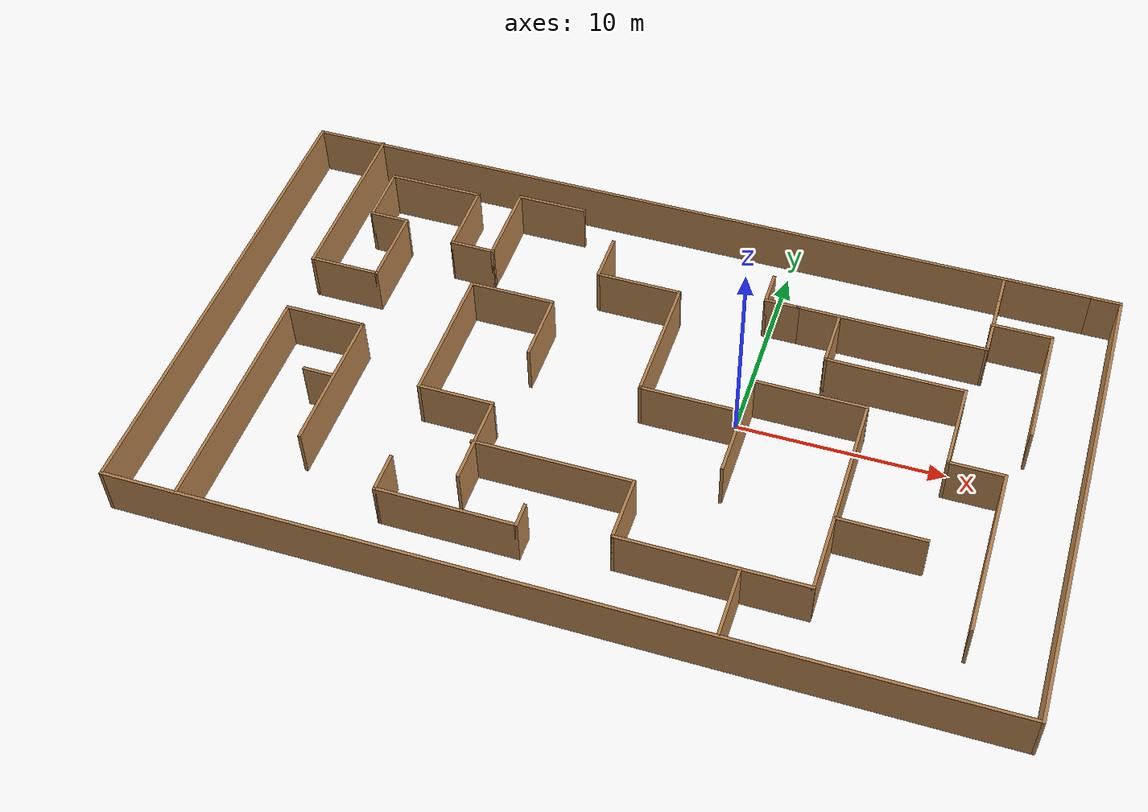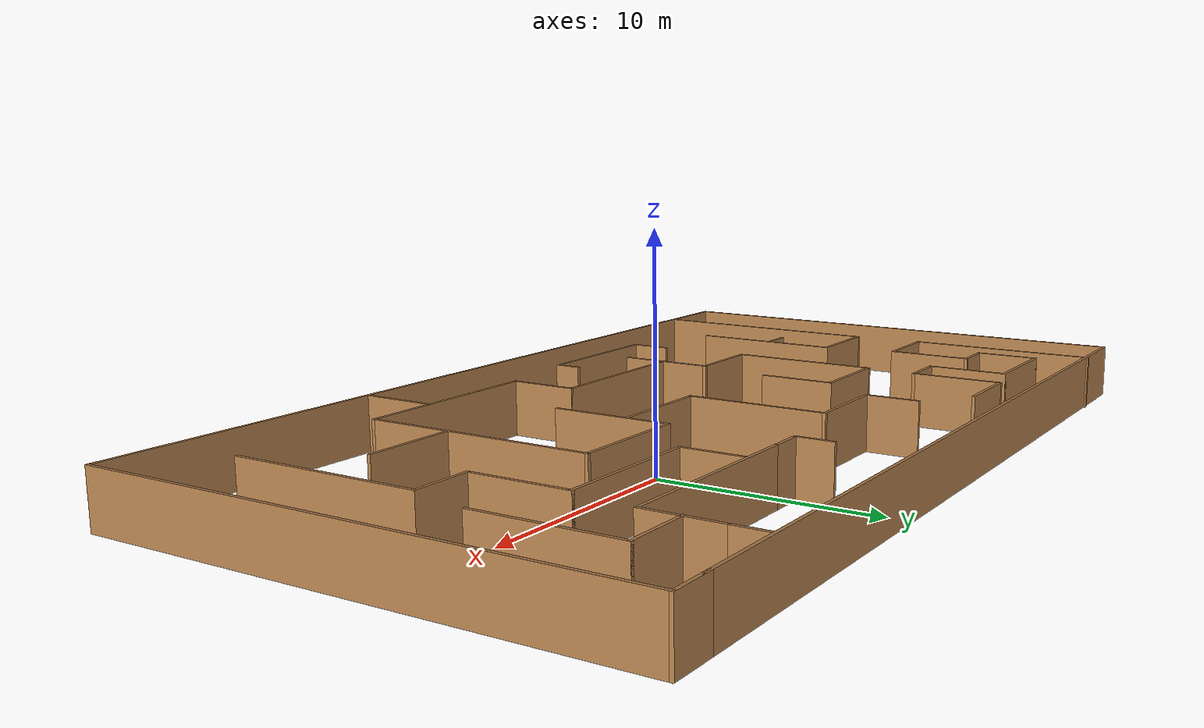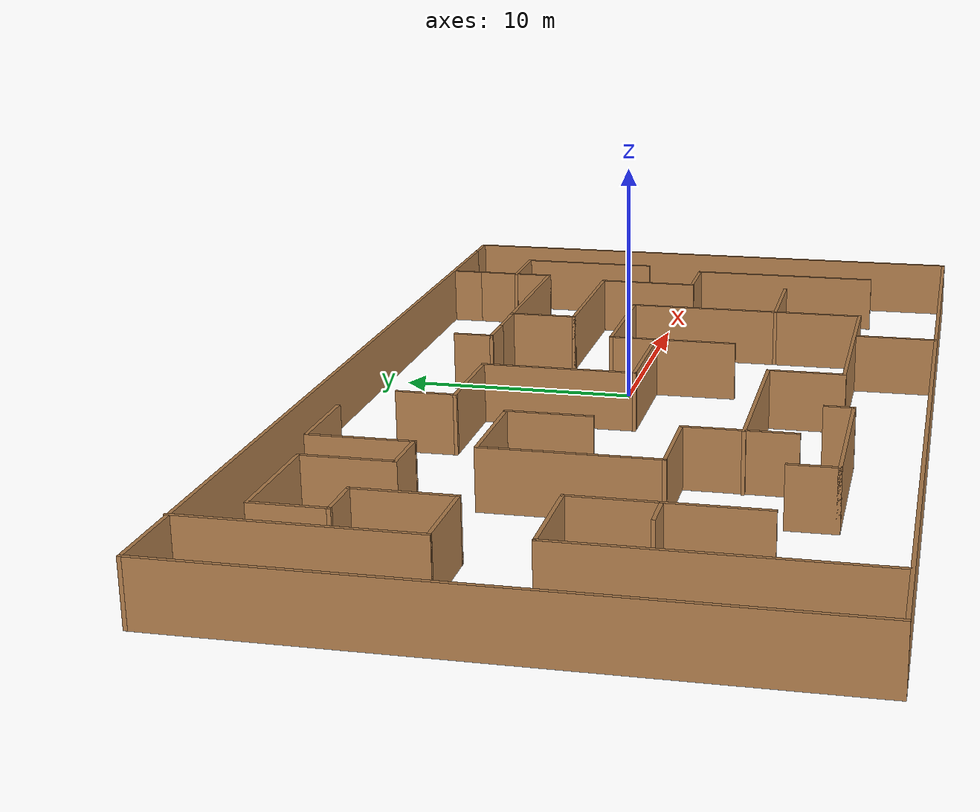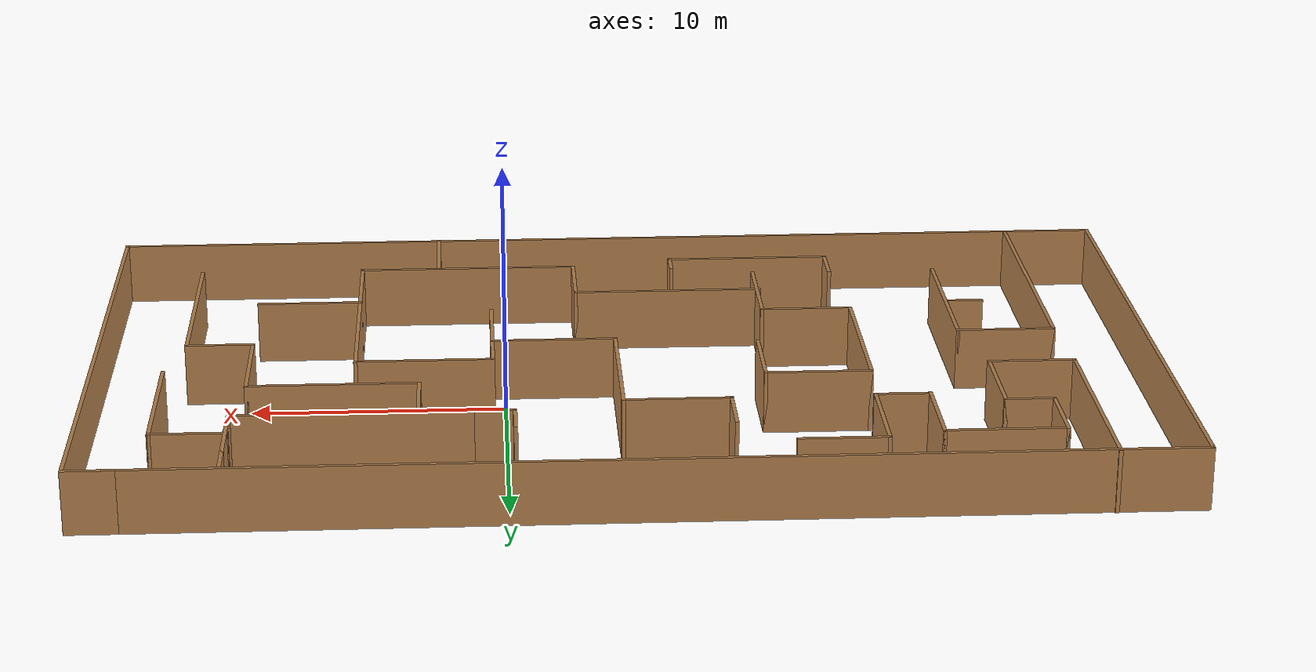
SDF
<?xml version='1.0'?>
<sdf version='1.7'>
  <model name='maze1'>
    <pose>-4.76912 -0.99516 0 0 -0 0</pose>
    <link name='Wall_0'>
      <collision name='Wall_0_Collision'>
        <geometry>
          <box>
            <size>40.25 0.15 2.5</size>
          </box>
        </geometry>
        <pose>0 0 1.25 0 -0 0</pose>
      </collision>
      <visual name='Wall_0_Visual'>
        <pose>0 0 1.25 0 -0 0</pose>
        <geometry>
          <box>
            <size>40.25 0.15 2.5</size>
          </box>
        </geometry>
        <material>
          <script>
            <uri>file:///usr/share/gazebo-11/media/materials/scripts/gazebo.material</uri>
            <name>Gazebo/Wood</name>
          </script>
          <ambient>0.5 1 0.5 1</ambient>
          <diffuse>0.5 1 0.5 1</diffuse>
          <specular>1 1 1 1</specular>

        </material>
        <meta>
          <layer>0</layer>
        </meta>
      </visual>
      <pose>-0.75 11.8857 0 0 -0 3.14159</pose>
    </link>
    <link name='Wall_1'>
      <collision name='Wall_1_Collision'>
        <geometry>
          <box>
            <size>24 0.15 2.5</size>
          </box>
        </geometry>
        <pose>0 0 1.25 0 -0 0</pose>
      </collision>
      <visual name='Wall_1_Visual'>
        <pose>0 0 1.25 0 -0 0</pose>
        <geometry>
          <box>
            <size>24 0.15 2.5</size>
          </box>
        </geometry>
        <material>
          <script>
            <uri>file:///usr/share/gazebo-11/media/materials/scripts/gazebo.material</uri>
            <name>Gazebo/Wood</name>
          </script>
          <ambient>0.5 1 0.5 1</ambient>
          <diffuse>0.5 1 0.5 1</diffuse>
          <specular>1 1 1 1</specular>

        </material>
        <meta>
          <layer>0</layer>
        </meta>
      </visual>
      <pose>-20.8 -0.039321 0 0 -0 -1.5708</pose>
    </link>
    <link name='Wall_10'>
      <collision name='Wall_10_Collision'>
        <geometry>
          <box>
            <size>4.5 0.15 2.5</size>
          </box>
        </geometry>
        <pose>0 0 1.25 0 -0 0</pose>
      </collision>
      <visual name='Wall_10_Visual'>
        <pose>0 0 1.25 0 -0 0</pose>
        <geometry>
          <box>
            <size>4.5 0.15 2.5</size>
          </box>
        </geometry>
        <material>
          <script>
            <uri>file:///usr/share/gazebo-11/media/materials/scripts/gazebo.material</uri>
            <name>Gazebo/Wood</name>
          </script>
          <ambient>0.5 1 0.5 1</ambient>
          <diffuse>0.5 1 0.5 1</diffuse>
          <specular>1 1 1 1</specular>

        </material>
        <meta>
          <layer>0</layer>
        </meta>
      </visual>
      <pose>-5.73871 -5.19443 0 0 -0 1.5708</pose>
    </link>
    <link name='Wall_11'>
      <collision name='Wall_11_Collision'>
        <geometry>
          <box>
            <size>3.75 0.15 2.5</size>
          </box>
        </geometry>
        <pose>0 0 1.25 0 -0 0</pose>
      </collision>
      <visual name='Wall_11_Visual'>
        <pose>0 0 1.25 0 -0 0</pose>
        <geometry>
          <box>
            <size>3.75 0.15 2.5</size>
          </box>
        </geometry>
        <material>
          <script>
            <uri>file:///usr/share/gazebo-11/media/materials/scripts/gazebo.material</uri>
            <name>Gazebo/Wood</name>
          </script>
          <ambient>0.5 1 0.5 1</ambient>
          <diffuse>0.5 1 0.5 1</diffuse>
          <specular>1 1 1 1</specular>

        </material>
        <meta>
          <layer>0</layer>
        </meta>
      </visual>
      <pose>-7.53871 -3.01943 0 0 -0 3.14159</pose>
    </link>
    <link name='Wall_12'>
      <collision name='Wall_12_Collision'>
        <geometry>
          <box>
            <size>7 0.15 2.5</size>
          </box>
        </geometry>
        <pose>0 0 1.25 0 -0 0</pose>
      </collision>
      <visual name='Wall_12_Visual'>
        <pose>0 0 1.25 0 -0 0</pose>
        <geometry>
          <box>
            <size>7 0.15 2.5</size>
          </box>
        </geometry>
        <material>
          <script>
            <uri>file:///usr/share/gazebo-11/media/materials/scripts/gazebo.material</uri>
            <name>Gazebo/Wood</name>
          </script>
          <ambient>0.5 1 0.5 1</ambient>
          <diffuse>0.5 1 0.5 1</diffuse>
          <specular>1 1 1 1</specular>

        </material>
        <meta>
          <layer>0</layer>
        </meta>
      </visual>
      <pose>-9.33871 0.405569 0 0 -0 1.5708</pose>
    </link>
    <link name='Wall_14'>
      <collision name='Wall_14_Collision'>
        <geometry>
          <box>
            <size>9 0.15 2.5</size>
          </box>
        </geometry>
        <pose>0 0 1.25 0 -0 0</pose>
      </collision>
      <visual name='Wall_14_Visual'>
        <pose>0 0 1.25 0 -0 0</pose>
        <geometry>
          <box>
            <size>9 0.15 2.5</size>
          </box>
        </geometry>
        <material>
          <script>
            <uri>file:///usr/share/gazebo-11/media/materials/scripts/gazebo.material</uri>
            <name>Gazebo/Wood</name>
          </script>
          <ambient>0.5 1 0.5 1</ambient>
          <diffuse>0.5 1 0.5 1</diffuse>
          <specular>1 1 1 1</specular>

        </material>
        <meta>
          <layer>0</layer>
        </meta>
      </visual>
      <pose>-17.3919 7.53932 0 0 -0 -1.5708</pose>
    </link>
    <link name='Wall_15'>
      <collision name='Wall_15_Collision'>
        <geometry>
          <box>
            <size>3.5 0.15 2.5</size>
          </box>
        </geometry>
        <pose>0 0 1.25 0 -0 0</pose>
      </collision>
      <visual name='Wall_15_Visual'>
        <pose>0 0 1.25 0 -0 0</pose>
        <geometry>
          <box>
            <size>3.5 0.15 2.5</size>
          </box>
        </geometry>
        <material>
          <script>
            <uri>file:///usr/share/gazebo-11/media/materials/scripts/gazebo.material</uri>
            <name>Gazebo/Wood</name>
          </script>
          <ambient>0.5 1 0.5 1</ambient>
          <diffuse>0.5 1 0.5 1</diffuse>
          <specular>1 1 1 1</specular>

        </material>
        <meta>
          <layer>0</layer>
        </meta>
      </visual>
      <pose>-15.7169 3.11432 0 0 -0 0</pose>
    </link>
    <link name='Wall_16'>
      <collision name='Wall_16_Collision'>
        <geometry>
          <box>
            <size>4 0.15 2.5</size>
          </box>
        </geometry>
        <pose>0 0 1.25 0 -0 0</pose>
      </collision>
      <visual name='Wall_16_Visual'>
        <pose>0 0 1.25 0 -0 0</pose>
        <geometry>
          <box>
            <size>4 0.15 2.5</size>
          </box>
        </geometry>
        <material>
          <script>
            <uri>file:///usr/share/gazebo-11/media/materials/scripts/gazebo.material</uri>
            <name>Gazebo/Wood</name>
          </script>
          <ambient>0.5 1 0.5 1</ambient>
          <diffuse>0.5 1 0.5 1</diffuse>
          <specular>1 1 1 1</specular>

        </material>
        <meta>
          <layer>0</layer>
        </meta>
      </visual>
      <pose>-14.0419 5.03932 0 0 -0 1.5708</pose>
    </link>
    <link name='Wall_17'>
      <collision name='Wall_17_Collision'>
        <geometry>
          <box>
            <size>2 0.15 2.5</size>
          </box>
        </geometry>
        <pose>0 0 1.25 0 -0 0</pose>
      </collision>
      <visual name='Wall_17_Visual'>
        <pose>0 0 1.25 0 -0 0</pose>
        <geometry>
          <box>
            <size>2 0.15 2.5</size>
          </box>
        </geometry>
        <material>
          <script>
            <uri>file:///usr/share/gazebo-11/media/materials/scripts/gazebo.material</uri>
            <name>Gazebo/Wood</name>
          </script>
          <ambient>0.5 1 0.5 1</ambient>
          <diffuse>0.5 1 0.5 1</diffuse>
          <specular>1 1 1 1</specular>

        </material>
        <meta>
          <layer>0</layer>
        </meta>
      </visual>
      <pose>-14.9669 6.96432 0 0 -0 3.14159</pose>
    </link>
    <link name='Wall_18'>
      <collision name='Wall_18_Collision'>
        <geometry>
          <box>
            <size>3 0.15 2.5</size>
          </box>
        </geometry>
        <pose>0 0 1.25 0 -0 0</pose>
      </collision>
      <visual name='Wall_18_Visual'>
        <pose>0 0 1.25 0 -0 0</pose>
        <geometry>
          <box>
            <size>3 0.15 2.5</size>
          </box>
        </geometry>
        <material>
          <script>
            <uri>file:///usr/share/gazebo-11/media/materials/scripts/gazebo.material</uri>
            <name>Gazebo/Wood</name>
          </script>
          <ambient>0.5 1 0.5 1</ambient>
          <diffuse>0.5 1 0.5 1</diffuse>
          <specular>1 1 1 1</specular>

        </material>
        <meta>
          <layer>0</layer>
        </meta>
      </visual>
      <pose>-15.8919 8.38932 0 0 -0 1.5708</pose>
    </link>
    <link name='Wall_19'>
      <collision name='Wall_19_Collision'>
        <geometry>
          <box>
            <size>4.75 0.15 2.5</size>
          </box>
        </geometry>
        <pose>0 0 1.25 0 -0 0</pose>
      </collision>
      <visual name='Wall_19_Visual'>
        <pose>0 0 1.25 0 -0 0</pose>
        <geometry>
          <box>
            <size>4.75 0.15 2.5</size>
          </box>
        </geometry>
        <material>
          <script>
            <uri>file:///usr/share/gazebo-11/media/materials/scripts/gazebo.material</uri>
            <name>Gazebo/Wood</name>
          </script>
          <ambient>0.5 1 0.5 1</ambient>
          <diffuse>0.5 1 0.5 1</diffuse>
          <specular>1 1 1 1</specular>

        </material>
        <meta>
          <layer>0</layer>
        </meta>
      </visual>
      <pose>-13.5919 9.81432 0 0 -0 0</pose>
    </link>
    <link name='Wall_2'>
      <collision name='Wall_2_Collision'>
        <geometry>
          <box>
            <size>41.75 0.15 2.5</size>
          </box>
        </geometry>
        <pose>0 0 1.25 0 -0 0</pose>
      </collision>
      <visual name='Wall_2_Visual'>
        <pose>0 0 1.25 0 -0 0</pose>
        <geometry>
          <box>
            <size>41.75 0.15 2.5</size>
          </box>
        </geometry>
        <material>
          <script>
            <uri>file:///usr/share/gazebo-11/media/materials/scripts/gazebo.material</uri>
            <name>Gazebo/Wood</name>
          </script>
          <ambient>0.5 1 0.5 1</ambient>
          <diffuse>0.5 1 0.5 1</diffuse>
          <specular>1 1 1 1</specular>

        </material>
        <meta>
          <layer>0</layer>
        </meta>
      </visual>
      <pose>-0 -11.9643 0 0 -0 0</pose>
    </link>
    <link name='Wall_20'>
      <collision name='Wall_20_Collision'>
        <geometry>
          <box>
            <size>3.75 0.15 2.5</size>
          </box>
        </geometry>
        <pose>0 0 1.25 0 -0 0</pose>
      </collision>
      <visual name='Wall_20_Visual'>
        <pose>0 0 1.25 0 -0 0</pose>
        <geometry>
          <box>
            <size>3.75 0.15 2.5</size>
          </box>
        </geometry>
        <material>
          <script>
            <uri>file:///usr/share/gazebo-11/media/materials/scripts/gazebo.material</uri>
            <name>Gazebo/Wood</name>
          </script>
          <ambient>0.5 1 0.5 1</ambient>
          <diffuse>0.5 1 0.5 1</diffuse>
          <specular>1 1 1 1</specular>

        </material>
        <meta>
          <layer>0</layer>
        </meta>
      </visual>
      <pose>-11.2919 8.01432 0 0 -0 -1.5708</pose>
    </link>
    <link name='Wall_21'>
      <collision name='Wall_21_Collision'>
        <geometry>
          <box>
            <size>2.25 0.15 2.5</size>
          </box>
        </geometry>
        <pose>0 0 1.25 0 -0 0</pose>
      </collision>
      <visual name='Wall_21_Visual'>
        <pose>0 0 1.25 0 -0 0</pose>
        <geometry>
          <box>
            <size>2.25 0.15 2.5</size>
          </box>
        </geometry>
        <material>
          <script>
            <uri>file:///usr/share/gazebo-11/media/materials/scripts/gazebo.material</uri>
            <name>Gazebo/Wood</name>
          </script>
          <ambient>0.5 1 0.5 1</ambient>
          <diffuse>0.5 1 0.5 1</diffuse>
          <specular>1 1 1 1</specular>

        </material>
        <meta>
          <layer>0</layer>
        </meta>
      </visual>
      <pose>-10.2419 6.21432 0 0 -0 0</pose>
    </link>
    <link name='Wall_22'>
      <collision name='Wall_22_Collision'>
        <geometry>
          <box>
            <size>4.25 0.15 2.5</size>
          </box>
        </geometry>
        <pose>0 0 1.25 0 -0 0</pose>
      </collision>
      <visual name='Wall_22_Visual'>
        <pose>0 0 1.25 0 -0 0</pose>
        <geometry>
          <box>
            <size>4.25 0.15 2.5</size>
          </box>
        </geometry>
        <material>
          <script>
            <uri>file:///usr/share/gazebo-11/media/materials/scripts/gazebo.material</uri>
            <name>Gazebo/Wood</name>
          </script>
          <ambient>0.5 1 0.5 1</ambient>
          <diffuse>0.5 1 0.5 1</diffuse>
          <specular>1 1 1 1</specular>

        </material>
        <meta>
          <layer>0</layer>
        </meta>
      </visual>
      <pose>-9.19191 8.26432 0 0 -0 1.5708</pose>
    </link>
    <link name='Wall_23'>
      <collision name='Wall_23_Collision'>
        <geometry>
          <box>
            <size>3.5 0.15 2.5</size>
          </box>
        </geometry>
        <pose>0 0 1.25 0 -0 0</pose>
      </collision>
      <visual name='Wall_23_Visual'>
        <pose>0 0 1.25 0 -0 0</pose>
        <geometry>
          <box>
            <size>3.5 0.15 2.5</size>
          </box>
        </geometry>
        <material>
          <script>
            <uri>file:///usr/share/gazebo-11/media/materials/scripts/gazebo.material</uri>
            <name>Gazebo/Wood</name>
          </script>
          <ambient>0.5 1 0.5 1</ambient>
          <diffuse>0.5 1 0.5 1</diffuse>
          <specular>1 1 1 1</specular>

        </material>
        <meta>
          <layer>0</layer>
        </meta>
      </visual>
      <pose>-7.51691 10.3143 0 0 -0 0</pose>
    </link>
    <link name='Wall_25'>
      <collision name='Wall_25_Collision'>
        <geometry>
          <box>
            <size>4.25 0.15 2.5</size>
          </box>
        </geometry>
        <pose>0 0 1.25 0 -0 0</pose>
      </collision>
      <visual name='Wall_25_Visual'>
        <pose>0 0 1.25 0 -0 0</pose>
        <geometry>
          <box>
            <size>4.25 0.15 2.5</size>
          </box>
        </geometry>
        <material>
          <script>
            <uri>file:///usr/share/gazebo-11/media/materials/scripts/gazebo.material</uri>
            <name>Gazebo/Wood</name>
          </script>
          <ambient>0.5 1 0.5 1</ambient>
          <diffuse>0.5 1 0.5 1</diffuse>
          <specular>1 1 1 1</specular>

        </material>
        <meta>
          <layer>0</layer>
        </meta>
      </visual>
      <pose>-7.28871 3.83057 0 0 -0 0</pose>
    </link>
    <link name='Wall_26'>
      <collision name='Wall_26_Collision'>
        <geometry>
          <box>
            <size>3.5 0.15 2.5</size>
          </box>
        </geometry>
        <pose>0 0 1.25 0 -0 0</pose>
      </collision>
      <visual name='Wall_26_Visual'>
        <pose>0 0 1.25 0 -0 0</pose>
        <geometry>
          <box>
            <size>3.5 0.15 2.5</size>
          </box>
        </geometry>
        <material>
          <script>
            <uri>file:///usr/share/gazebo-11/media/materials/scripts/gazebo.material</uri>
            <name>Gazebo/Wood</name>
          </script>
          <ambient>0.5 1 0.5 1</ambient>
          <diffuse>0.5 1 0.5 1</diffuse>
          <specular>1 1 1 1</specular>

        </material>
        <meta>
          <layer>0</layer>
        </meta>
      </visual>
      <pose>-5.23871 2.15557 0 0 -0 -1.5708</pose>
    </link>
    <link name='Wall_28'>
      <collision name='Wall_28_Collision'>
        <geometry>
          <box>
            <size>7.75 0.15 2.5</size>
          </box>
        </geometry>
        <pose>0 0 1.25 0 -0 0</pose>
      </collision>
      <visual name='Wall_28_Visual'>
        <pose>0 0 1.25 0 -0 0</pose>
        <geometry>
          <box>
            <size>7.75 0.15 2.5</size>
          </box>
        </geometry>
        <material>
          <script>
            <uri>file:///usr/share/gazebo-11/media/materials/scripts/gazebo.material</uri>
            <name>Gazebo/Wood</name>
          </script>
          <ambient>0.5 1 0.5 1</ambient>
          <diffuse>0.5 1 0.5 1</diffuse>
          <specular>1 1 1 1</specular>

        </material>
        <meta>
          <layer>0</layer>
        </meta>
      </visual>
      <pose>-2.03537 -5.37049 0 0 -0 0</pose>
    </link>
    <link name='Wall_29'>
      <collision name='Wall_29_Collision'>
        <geometry>
          <box>
            <size>3.25 0.15 2.5</size>
          </box>
        </geometry>
        <pose>0 0 1.25 0 -0 0</pose>
      </collision>
      <visual name='Wall_29_Visual'>
        <pose>0 0 1.25 0 -0 0</pose>
        <geometry>
          <box>
            <size>3.25 0.15 2.5</size>
          </box>
        </geometry>
        <material>
          <script>
            <uri>file:///usr/share/gazebo-11/media/materials/scripts/gazebo.material</uri>
            <name>Gazebo/Wood</name>
          </script>
          <ambient>0.5 1 0.5 1</ambient>
          <diffuse>0.5 1 0.5 1</diffuse>
          <specular>1 1 1 1</specular>

        </material>
        <meta>
          <layer>0</layer>
        </meta>
      </visual>
      <pose>1.76463 -6.92049 0 0 -0 -1.5708</pose>
    </link>
    <link name='Wall_3'>
      <collision name='Wall_3_Collision'>
        <geometry>
          <box>
            <size>24 0.15 2.5</size>
          </box>
        </geometry>
        <pose>0 0 1.25 0 -0 0</pose>
      </collision>
      <visual name='Wall_3_Visual'>
        <pose>0 0 1.25 0 -0 0</pose>
        <geometry>
          <box>
            <size>24 0.15 2.5</size>
          </box>
        </geometry>
        <material>
          <script>
            <uri>file:///usr/share/gazebo-11/media/materials/scripts/gazebo.material</uri>
            <name>Gazebo/Wood</name>
          </script>
          <ambient>0.5 1 0.5 1</ambient>
          <diffuse>0.5 1 0.5 1</diffuse>
          <specular>1 1 1 1</specular>

        </material>
        <meta>
          <layer>0</layer>
        </meta>
      </visual>
      <pose>20.8 -0.039321 0 0 -0 1.5708</pose>
    </link>
    <link name='Wall_30'>
      <collision name='Wall_30_Collision'>
        <geometry>
          <box>
            <size>9 0.15 2.5</size>
          </box>
        </geometry>
        <pose>0 0 1.25 0 -0 0</pose>
      </collision>
      <visual name='Wall_30_Visual'>
        <pose>0 0 1.25 0 -0 0</pose>
        <geometry>
          <box>
            <size>9 0.15 2.5</size>
          </box>
        </geometry>
        <material>
          <script>
            <uri>file:///usr/share/gazebo-11/media/materials/scripts/gazebo.material</uri>
            <name>Gazebo/Wood</name>
          </script>
          <ambient>0.5 1 0.5 1</ambient>
          <diffuse>0.5 1 0.5 1</diffuse>
          <specular>1 1 1 1</specular>

        </material>
        <meta>
          <layer>0</layer>
        </meta>
      </visual>
      <pose>6.18963 -8.47049 0 0 -0 0</pose>
    </link>
    <link name='Wall_31'>
      <collision name='Wall_31_Collision'>
        <geometry>
          <box>
            <size>10.5 0.15 2.5</size>
          </box>
        </geometry>
        <pose>0 0 1.25 0 -0 0</pose>
      </collision>
      <visual name='Wall_31_Visual'>
        <pose>0 0 1.25 0 -0 0</pose>
        <geometry>
          <box>
            <size>10.5 0.15 2.5</size>
          </box>
        </geometry>
        <material>
          <script>
            <uri>file:///usr/share/gazebo-11/media/materials/scripts/gazebo.material</uri>
            <name>Gazebo/Wood</name>
          </script>
          <ambient>0.5 1 0.5 1</ambient>
          <diffuse>0.5 1 0.5 1</diffuse>
          <specular>1 1 1 1</specular>

        </material>
        <meta>
          <layer>0</layer>
        </meta>
      </visual>
      <pose>10.6146 -3.29549 0 0 -0 1.5708</pose>
    </link>
    <link name='Wall_32'>
      <collision name='Wall_32_Collision'>
        <geometry>
          <box>
            <size>5.5 0.15 2.5</size>
          </box>
        </geometry>
        <pose>0 0 1.25 0 -0 0</pose>
      </collision>
      <visual name='Wall_32_Visual'>
        <pose>0 0 1.25 0 -0 0</pose>
        <geometry>
          <box>
            <size>5.5 0.15 2.5</size>
          </box>
        </geometry>
        <material>
          <script>
            <uri>file:///usr/share/gazebo-11/media/materials/scripts/gazebo.material</uri>
            <name>Gazebo/Wood</name>
          </script>
          <ambient>0.5 1 0.5 1</ambient>
          <diffuse>0.5 1 0.5 1</diffuse>
          <specular>1 1 1 1</specular>

        </material>
        <meta>
          <layer>0</layer>
        </meta>
      </visual>
      <pose>7.93963 1.87951 0 0 -0 3.14159</pose>
    </link>
    <link name='Wall_33'>
      <collision name='Wall_33_Collision'>
        <geometry>
          <box>
            <size>5.5 0.15 2.5</size>
          </box>
        </geometry>
        <pose>0 0 1.25 0 -0 0</pose>
      </collision>
      <visual name='Wall_33_Visual'>
        <pose>0 0 1.25 0 -0 0</pose>
        <geometry>
          <box>
            <size>5.5 0.15 2.5</size>
          </box>
        </geometry>
        <material>
          <script>
            <uri>file:///usr/share/gazebo-11/media/materials/scripts/gazebo.material</uri>
            <name>Gazebo/Wood</name>
          </script>
          <ambient>0.5 1 0.5 1</ambient>
          <diffuse>0.5 1 0.5 1</diffuse>
          <specular>1 1 1 1</specular>

        </material>
        <meta>
          <layer>0</layer>
        </meta>
      </visual>
      <pose>5.26463 -0.795487 0 0 -0 -1.5708</pose>
    </link>
    <link name='Wall_35'>
      <collision name='Wall_35_Collision'>
        <geometry>
          <box>
            <size>5 0.15 2.5</size>
          </box>
        </geometry>
        <pose>0 0 1.25 0 -0 0</pose>
      </collision>
      <visual name='Wall_35_Visual'>
        <pose>0 0 1.25 0 -0 0</pose>
        <geometry>
          <box>
            <size>5 0.15 2.5</size>
          </box>
        </geometry>
        <material>
          <script>
            <uri>file:///usr/share/gazebo-11/media/materials/scripts/gazebo.material</uri>
            <name>Gazebo/Wood</name>
          </script>
          <ambient>0.5 1 0.5 1</ambient>
          <diffuse>0.5 1 0.5 1</diffuse>
          <specular>1 1 1 1</specular>

        </material>
        <meta>
          <layer>0</layer>
        </meta>
      </visual>
      <pose>2.81465 -0.07374 0 0 -0 3.14159</pose>
    </link>
    <link name='Wall_36'>
      <collision name='Wall_36_Collision'>
        <geometry>
          <box>
            <size>6.5 0.15 2.5</size>
          </box>
        </geometry>
        <pose>0 0 1.25 0 -0 0</pose>
      </collision>
      <visual name='Wall_36_Visual'>
        <pose>0 0 1.25 0 -0 0</pose>
        <geometry>
          <box>
            <size>6.5 0.15 2.5</size>
          </box>
        </geometry>
        <material>
          <script>
            <uri>file:///usr/share/gazebo-11/media/materials/scripts/gazebo.material</uri>
            <name>Gazebo/Wood</name>
          </script>
          <ambient>0.5 1 0.5 1</ambient>
          <diffuse>0.5 1 0.5 1</diffuse>
          <specular>1 1 1 1</specular>

        </material>
        <meta>
          <layer>0</layer>
        </meta>
      </visual>
      <pose>0.389649 3.10126 0 0 -0 1.5708</pose>
    </link>
    <link name='Wall_37'>
      <collision name='Wall_37_Collision'>
        <geometry>
          <box>
            <size>4.25 0.15 2.5</size>
          </box>
        </geometry>
        <pose>0 0 1.25 0 -0 0</pose>
      </collision>
      <visual name='Wall_37_Visual'>
        <pose>0 0 1.25 0 -0 0</pose>
        <geometry>
          <box>
            <size>4.25 0.15 2.5</size>
          </box>
        </geometry>
        <material>
          <script>
            <uri>file:///usr/share/gazebo-11/media/materials/scripts/gazebo.material</uri>
            <name>Gazebo/Wood</name>
          </script>
          <ambient>0.5 1 0.5 1</ambient>
          <diffuse>0.5 1 0.5 1</diffuse>
          <specular>1 1 1 1</specular>

        </material>
        <meta>
          <layer>0</layer>
        </meta>
      </visual>
      <pose>-1.66035 6.27626 0 0 -0 3.14159</pose>
    </link>
    <link name='Wall_38'>
      <collision name='Wall_38_Collision'>
        <geometry>
          <box>
            <size>2.5 0.15 2.5</size>
          </box>
        </geometry>
        <pose>0 0 1.25 0 -0 0</pose>
      </collision>
      <visual name='Wall_38_Visual'>
        <pose>0 0 1.25 0 -0 0</pose>
        <geometry>
          <box>
            <size>2.5 0.15 2.5</size>
          </box>
        </geometry>
        <material>
          <script>
            <uri>file:///usr/share/gazebo-11/media/materials/scripts/gazebo.material</uri>
            <name>Gazebo/Wood</name>
          </script>
          <ambient>0.5 1 0.5 1</ambient>
          <diffuse>0.5 1 0.5 1</diffuse>
          <specular>1 1 1 1</specular>

        </material>
        <meta>
          <layer>0</layer>
        </meta>
      </visual>
      <pose>-3.71035 7.45126 0 0 -0 1.5708</pose>
    </link>
    <link name='Wall_4'>
      <collision name='Wall_4_Collision'>
        <geometry>
          <box>
            <size>2 0.15 2.5</size>
          </box>
        </geometry>
        <pose>0 0 1.25 0 -0 0</pose>
      </collision>
      <visual name='Wall_4_Visual'>
        <pose>0 0 1.25 0 -0 0</pose>
        <geometry>
          <box>
            <size>2 0.15 2.5</size>
          </box>
        </geometry>
        <material>
          <script>
            <uri>file:///usr/share/gazebo-11/media/materials/scripts/gazebo.material</uri>
            <name>Gazebo/Wood</name>
          </script>
          <ambient>0.5 1 0.5 1</ambient>
          <diffuse>0.5 1 0.5 1</diffuse>
          <specular>1 1 1 1</specular>

        </material>
        <meta>
          <layer>0</layer>
        </meta>
      </visual>
      <pose>19.875 11.8857 0 0 -0 3.14159</pose>
    </link>
    <link name='Wall_43'>
      <collision name='Wall_43_Collision'>
        <geometry>
          <box>
            <size>9.25 0.15 2.5</size>
          </box>
        </geometry>
        <pose>0 0 1.25 0 -0 0</pose>
      </collision>
      <visual name='Wall_43_Visual'>
        <pose>0 0 1.25 0 -0 0</pose>
        <geometry>
          <box>
            <size>9.25 0.15 2.5</size>
          </box>
        </geometry>
        <material>
          <script>
            <uri>file:///usr/share/gazebo-11/media/materials/scripts/gazebo.material</uri>
            <name>Gazebo/Wood</name>
          </script>
          <ambient>0.5 1 0.5 1</ambient>
          <diffuse>0.5 1 0.5 1</diffuse>
          <specular>1 1 1 1</specular>

        </material>
        <meta>
          <layer>0</layer>
        </meta>
      </visual>
      <pose>10.6457 7.04209 0 0 -0 0</pose>
    </link>
    <link name='Wall_44'>
      <collision name='Wall_44_Collision'>
        <geometry>
          <box>
            <size>3.5 0.15 2.5</size>
          </box>
        </geometry>
        <pose>0 0 1.25 0 -0 0</pose>
      </collision>
      <visual name='Wall_44_Visual'>
        <pose>0 0 1.25 0 -0 0</pose>
        <geometry>
          <box>
            <size>3.5 0.15 2.5</size>
          </box>
        </geometry>
        <material>
          <script>
            <uri>file:///usr/share/gazebo-11/media/materials/scripts/gazebo.material</uri>
            <name>Gazebo/Wood</name>
          </script>
          <ambient>0.5 1 0.5 1</ambient>
          <diffuse>0.5 1 0.5 1</diffuse>
          <specular>1 1 1 1</specular>

        </material>
        <meta>
          <layer>0</layer>
        </meta>
      </visual>
      <pose>15.1957 8.71709 0 0 -0 1.5708</pose>
    </link>
    <link name='Wall_45'>
      <collision name='Wall_45_Collision'>
        <geometry>
          <box>
            <size>1.5 0.15 2.5</size>
          </box>
        </geometry>
        <pose>0 0 1.25 0 -0 0</pose>
      </collision>
      <visual name='Wall_45_Visual'>
        <pose>0 0 1.25 0 -0 0</pose>
        <geometry>
          <box>
            <size>1.5 0.15 2.5</size>
          </box>
        </geometry>
        <material>
          <script>
            <uri>file:///usr/share/gazebo-11/media/materials/scripts/gazebo.material</uri>
            <name>Gazebo/Wood</name>
          </script>
          <ambient>0.5 1 0.5 1</ambient>
          <diffuse>0.5 1 0.5 1</diffuse>
          <specular>1 1 1 1</specular>

        </material>
        <meta>
          <layer>0</layer>
        </meta>
      </visual>
      <pose>15.1957 11.0671 0 0 -0 1.5708</pose>
    </link>
    <link name='Wall_47'>
      <collision name='Wall_47_Collision'>
        <geometry>
          <box>
            <size>1.75 0.15 2.5</size>
          </box>
        </geometry>
        <pose>0 0 1.25 0 -0 0</pose>
      </collision>
      <visual name='Wall_47_Visual'>
        <pose>0 0 1.25 0 -0 0</pose>
        <geometry>
          <box>
            <size>1.75 0.15 2.5</size>
          </box>
        </geometry>
        <material>
          <script>
            <uri>file:///usr/share/gazebo-11/media/materials/scripts/gazebo.material</uri>
            <name>Gazebo/Wood</name>
          </script>
          <ambient>0.5 1 0.5 1</ambient>
          <diffuse>0.5 1 0.5 1</diffuse>
          <specular>1 1 1 1</specular>

        </material>
        <meta>
          <layer>0</layer>
        </meta>
      </visual>
      <pose>5.29569 7.04209 0 0 -0 3.14159</pose>
    </link>
    <link name='Wall_48'>
      <collision name='Wall_48_Collision'>
        <geometry>
          <box>
            <size>1.75 0.15 2.5</size>
          </box>
        </geometry>
        <pose>0 0 1.25 0 -0 0</pose>
      </collision>
      <visual name='Wall_48_Visual'>
        <pose>0 0 1.25 0 -0 0</pose>
        <geometry>
          <box>
            <size>1.75 0.15 2.5</size>
          </box>
        </geometry>
        <material>
          <script>
            <uri>file:///usr/share/gazebo-11/media/materials/scripts/gazebo.material</uri>
            <name>Gazebo/Wood</name>
          </script>
          <ambient>0.5 1 0.5 1</ambient>
          <diffuse>0.5 1 0.5 1</diffuse>
          <specular>1 1 1 1</specular>

        </material>
        <meta>
          <layer>0</layer>
        </meta>
      </visual>
      <pose>4.49569 7.84209 0 0 -0 1.5708</pose>
    </link>
    <link name='Wall_52'>
      <collision name='Wall_52_Collision'>
        <geometry>
          <box>
            <size>3 0.15 2.5</size>
          </box>
        </geometry>
        <pose>0 0 1.25 0 -0 0</pose>
      </collision>
      <visual name='Wall_52_Visual'>
        <pose>0 0 1.25 0 -0 0</pose>
        <geometry>
          <box>
            <size>3 0.15 2.5</size>
          </box>
        </geometry>
        <material>
          <script>
            <uri>file:///usr/share/gazebo-11/media/materials/scripts/gazebo.material</uri>
            <name>Gazebo/Wood</name>
          </script>
          <ambient>0.5 1 0.5 1</ambient>
          <diffuse>0.5 1 0.5 1</diffuse>
          <specular>1 1 1 1</specular>

        </material>
        <meta>
          <layer>0</layer>
        </meta>
      </visual>
      <pose>8.11371 5.61247 0 0 -0 -1.5708</pose>
    </link>
    <link name='Wall_53'>
      <collision name='Wall_53_Collision'>
        <geometry>
          <box>
            <size>6.75 0.15 2.5</size>
          </box>
        </geometry>
        <pose>0 0 1.25 0 -0 0</pose>
      </collision>
      <visual name='Wall_53_Visual'>
        <pose>0 0 1.25 0 -0 0</pose>
        <geometry>
          <box>
            <size>6.75 0.15 2.5</size>
          </box>
        </geometry>
        <material>
          <script>
            <uri>file:///usr/share/gazebo-11/media/materials/scripts/gazebo.material</uri>
            <name>Gazebo/Wood</name>
          </script>
          <ambient>0.5 1 0.5 1</ambient>
          <diffuse>0.5 1 0.5 1</diffuse>
          <specular>1 1 1 1</specular>

        </material>
        <meta>
          <layer>0</layer>
        </meta>
      </visual>
      <pose>11.4137 4.18747 0 0 -0 0</pose>
    </link>
    <link name='Wall_55'>
      <collision name='Wall_55_Collision'>
        <geometry>
          <box>
            <size>4.25 0.15 2.5</size>
          </box>
        </geometry>
        <pose>0 0 1.25 0 -0 0</pose>
      </collision>
      <visual name='Wall_55_Visual'>
        <pose>0 0 1.25 0 -0 0</pose>
        <geometry>
          <box>
            <size>4.25 0.15 2.5</size>
          </box>
        </geometry>
        <material>
          <script>
            <uri>file:///usr/share/gazebo-11/media/materials/scripts/gazebo.material</uri>
            <name>Gazebo/Wood</name>
          </script>
          <ambient>0.5 1 0.5 1</ambient>
          <diffuse>0.5 1 0.5 1</diffuse>
          <specular>1 1 1 1</specular>

        </material>
        <meta>
          <layer>0</layer>
        </meta>
      </visual>
      <pose>12.6637 -4.66253 0 0 -0 3.14159</pose>
    </link>
    <link name='Wall_57'>
      <collision name='Wall_57_Collision'>
        <geometry>
          <box>
            <size>4.5 0.15 2.5</size>
          </box>
        </geometry>
        <pose>0 0 1.25 0 -0 0</pose>
      </collision>
      <visual name='Wall_57_Visual'>
        <pose>0 0 1.25 0 -0 0</pose>
        <geometry>
          <box>
            <size>4.5 0.15 2.5</size>
          </box>
        </geometry>
        <material>
          <script>
            <uri>file:///usr/share/gazebo-11/media/materials/scripts/gazebo.material</uri>
            <name>Gazebo/Wood</name>
          </script>
          <ambient>0.5 1 0.5 1</ambient>
          <diffuse>0.5 1 0.5 1</diffuse>
          <specular>1 1 1 1</specular>

        </material>
        <meta>
          <layer>0</layer>
        </meta>
      </visual>
      <pose>14.7137 2.01247 0 0 -0 -1.5708</pose>
    </link>
    <link name='Wall_58'>
      <collision name='Wall_58_Collision'>
        <geometry>
          <box>
            <size>2.75 0.15 2.5</size>
          </box>
        </geometry>
        <pose>0 0 1.25 0 -0 0</pose>
      </collision>
      <visual name='Wall_58_Visual'>
        <pose>0 0 1.25 0 -0 0</pose>
        <geometry>
          <box>
            <size>2.75 0.15 2.5</size>
          </box>
        </geometry>
        <material>
          <script>
            <uri>file:///usr/share/gazebo-11/media/materials/scripts/gazebo.material</uri>
            <name>Gazebo/Wood</name>
          </script>
          <ambient>0.5 1 0.5 1</ambient>
          <diffuse>0.5 1 0.5 1</diffuse>
          <specular>1 1 1 1</specular>

        </material>
        <meta>
          <layer>0</layer>
        </meta>
      </visual>
      <pose>16.0137 -0.162526 0 0 -0 0</pose>
    </link>
    <link name='Wall_59'>
      <collision name='Wall_59_Collision'>
        <geometry>
          <box>
            <size>8.5 0.15 2.5</size>
          </box>
        </geometry>
        <pose>0 0 1.25 0 -0 0</pose>
      </collision>
      <visual name='Wall_59_Visual'>
        <pose>0 0 1.25 0 -0 0</pose>
        <geometry>
          <box>
            <size>8.5 0.15 2.5</size>
          </box>
        </geometry>
        <material>
          <script>
            <uri>file:///usr/share/gazebo-11/media/materials/scripts/gazebo.material</uri>
            <name>Gazebo/Wood</name>
          </script>
          <ambient>0.5 1 0.5 1</ambient>
          <diffuse>0.5 1 0.5 1</diffuse>
          <specular>1 1 1 1</specular>

        </material>
        <meta>
          <layer>0</layer>
        </meta>
      </visual>
      <pose>17.3137 -4.33753 0 0 -0 -1.5708</pose>
    </link>
    <link name='Wall_6'>
      <collision name='Wall_6_Collision'>
        <geometry>
          <box>
            <size>11.75 0.15 2.5</size>
          </box>
        </geometry>
        <pose>0 0 1.25 0 -0 0</pose>
      </collision>
      <visual name='Wall_6_Visual'>
        <pose>0 0 1.25 0 -0 0</pose>
        <geometry>
          <box>
            <size>11.75 0.15 2.5</size>
          </box>
        </geometry>
        <material>
          <script>
            <uri>file:///usr/share/gazebo-11/media/materials/scripts/gazebo.material</uri>
            <name>Gazebo/Wood</name>
          </script>
          <ambient>0.5 1 0.5 1</ambient>
          <diffuse>0.5 1 0.5 1</diffuse>
          <specular>1 1 1 1</specular>

        </material>
        <meta>
          <layer>0</layer>
        </meta>
      </visual>
      <pose>-17.1887 -6.06943 0 0 -0 1.5708</pose>
    </link>
    <link name='Wall_63'>
      <collision name='Wall_63_Collision'>
        <geometry>
          <box>
            <size>2 0.15 2.5</size>
          </box>
        </geometry>
        <pose>0 0 1.25 0 -0 0</pose>
      </collision>
      <visual name='Wall_63_Visual'>
        <pose>0 0 1.25 0 -0 0</pose>
        <geometry>
          <box>
            <size>2 0.15 2.5</size>
          </box>
        </geometry>
        <material>
          <script>
            <uri>file:///usr/share/gazebo-11/media/materials/scripts/gazebo.material</uri>
            <name>Gazebo/Wood</name>
          </script>
          <ambient>0.5 1 0.5 1</ambient>
          <diffuse>0.5 1 0.5 1</diffuse>
          <specular>1 1 1 1</specular>

        </material>
        <meta>
          <layer>0</layer>
        </meta>
      </visual>
      <pose>-8.96773 -8.22166 0 0 -0 -1.5708</pose>
    </link>
    <link name='Wall_64'>
      <collision name='Wall_64_Collision'>
        <geometry>
          <box>
            <size>6.75 0.15 2.5</size>
          </box>
        </geometry>
        <pose>0 0 1.25 0 -0 0</pose>
      </collision>
      <visual name='Wall_64_Visual'>
        <pose>0 0 1.25 0 -0 0</pose>
        <geometry>
          <box>
            <size>6.75 0.15 2.5</size>
          </box>
        </geometry>
        <material>
          <script>
            <uri>file:///usr/share/gazebo-11/media/materials/scripts/gazebo.material</uri>
            <name>Gazebo/Wood</name>
          </script>
          <ambient>0.5 1 0.5 1</ambient>
          <diffuse>0.5 1 0.5 1</diffuse>
          <specular>1 1 1 1</specular>

        </material>
        <meta>
          <layer>0</layer>
        </meta>
      </visual>
      <pose>-5.66773 -9.14666 0 0 -0 0</pose>
    </link>
    <link name='Wall_65'>
      <collision name='Wall_65_Collision'>
        <geometry>
          <box>
            <size>1.25 0.15 2.5</size>
          </box>
        </geometry>
        <pose>0 0 1.25 0 -0 0</pose>
      </collision>
      <visual name='Wall_65_Visual'>
        <pose>0 0 1.25 0 -0 0</pose>
        <geometry>
          <box>
            <size>1.25 0.15 2.5</size>
          </box>
        </geometry>
        <material>
          <script>
            <uri>file:///usr/share/gazebo-11/media/materials/scripts/gazebo.material</uri>
            <name>Gazebo/Wood</name>
          </script>
          <ambient>0.5 1 0.5 1</ambient>
          <diffuse>0.5 1 0.5 1</diffuse>
          <specular>1 1 1 1</specular>

        </material>
        <meta>
          <layer>0</layer>
        </meta>
      </visual>
      <pose>-2.36773 -8.59666 0 0 -0 1.5708</pose>
    </link>
    <link name='Wall_69'>
      <collision name='Wall_69_Collision'>
        <geometry>
          <box>
            <size>3.5 0.15 2.5</size>
          </box>
        </geometry>
        <pose>0 0 1.25 0 -0 0</pose>
      </collision>
      <visual name='Wall_69_Visual'>
        <pose>0 0 1.25 0 -0 0</pose>
        <geometry>
          <box>
            <size>3.5 0.15 2.5</size>
          </box>
        </geometry>
        <material>
          <script>
            <uri>file:///usr/share/gazebo-11/media/materials/scripts/gazebo.material</uri>
            <name>Gazebo/Wood</name>
          </script>
          <ambient>0.5 1 0.5 1</ambient>
          <diffuse>0.5 1 0.5 1</diffuse>
          <specular>1 1 1 1</specular>

        </material>
        <meta>
          <layer>0</layer>
        </meta>
      </visual>
      <pose>7.42858 -10.2385 0 0 -0 1.5708</pose>
    </link>
    <link name='Wall_7'>
      <collision name='Wall_7_Collision'>
        <geometry>
          <box>
            <size>4 0.15 2.5</size>
          </box>
        </geometry>
        <pose>0 0 1.25 0 -0 0</pose>
      </collision>
      <visual name='Wall_7_Visual'>
        <pose>0 0 1.25 0 -0 0</pose>
        <geometry>
          <box>
            <size>4 0.15 2.5</size>
          </box>
        </geometry>
        <material>
          <script>
            <uri>file:///usr/share/gazebo-11/media/materials/scripts/gazebo.material</uri>
            <name>Gazebo/Wood</name>
          </script>
          <ambient>0.5 1 0.5 1</ambient>
          <diffuse>0.5 1 0.5 1</diffuse>
          <specular>1 1 1 1</specular>

        </material>
        <meta>
          <layer>0</layer>
        </meta>
      </visual>
      <pose>-15.2637 -0.269431 0 0 -0 0</pose>
    </link>
    <link name='Wall_71'>
      <collision name='Wall_71_Collision'>
        <geometry>
          <box>
            <size>1.5 0.15 2.5</size>
          </box>
        </geometry>
        <pose>0 0 1.25 0 -0 0</pose>
      </collision>
      <visual name='Wall_71_Visual'>
        <pose>0 0 1.25 0 -0 0</pose>
        <geometry>
          <box>
            <size>1.5 0.15 2.5</size>
          </box>
        </geometry>
        <material>
          <script>
            <uri>file:///usr/share/gazebo-11/media/materials/scripts/gazebo.material</uri>
            <name>Gazebo/Wood</name>
          </script>
          <ambient>0.5 1 0.5 1</ambient>
          <diffuse>0.5 1 0.5 1</diffuse>
          <specular>1 1 1 1</specular>

        </material>
        <meta>
          <layer>0</layer>
        </meta>
      </visual>
      <pose>-14.1299 -3.61829 0 0 -0 3.14159</pose>
    </link>
    <link name='Wall_73'>
      <collision name='Wall_73_Collision'>
        <geometry>
          <box>
            <size>3 0.15 2.5</size>
          </box>
        </geometry>
        <pose>0 0 1.25 0 -0 0</pose>
      </collision>
      <visual name='Wall_73_Visual'>
        <pose>0 0 1.25 0 -0 0</pose>
        <geometry>
          <box>
            <size>3 0.15 2.5</size>
          </box>
        </geometry>
        <material>
          <script>
            <uri>file:///usr/share/gazebo-11/media/materials/scripts/gazebo.material</uri>
            <name>Gazebo/Wood</name>
          </script>
          <ambient>0.5 1 0.5 1</ambient>
          <diffuse>0.5 1 0.5 1</diffuse>
          <specular>1 1 1 1</specular>

        </material>
        <meta>
          <layer>0</layer>
        </meta>
      </visual>
      <pose>16.5806 8.68729 0 0 -0 0</pose>
    </link>
    <link name='Wall_74'>
      <collision name='Wall_74_Collision'>
        <geometry>
          <box>
            <size>6.25 0.15 2.5</size>
          </box>
        </geometry>
        <pose>0 0 1.25 0 -0 0</pose>
      </collision>
      <visual name='Wall_74_Visual'>
        <pose>0 0 1.25 0 -0 0</pose>
        <geometry>
          <box>
            <size>6.25 0.15 2.5</size>
          </box>
        </geometry>
        <material>
          <script>
            <uri>file:///usr/share/gazebo-11/media/materials/scripts/gazebo.material</uri>
            <name>Gazebo/Wood</name>
          </script>
          <ambient>0.5 1 0.5 1</ambient>
          <diffuse>0.5 1 0.5 1</diffuse>
          <specular>1 1 1 1</specular>

        </material>
        <meta>
          <layer>0</layer>
        </meta>
      </visual>
      <pose>18.0056 5.63729 0 0 -0 -1.5708</pose>
    </link>
    <link name='Wall_8'>
      <collision name='Wall_8_Collision'>
        <geometry>
          <box>
            <size>7.25 0.15 2.5</size>
          </box>
        </geometry>
        <pose>0 0 1.25 0 -0 0</pose>
      </collision>
      <visual name='Wall_8_Visual'>
        <pose>0 0 1.25 0 -0 0</pose>
        <geometry>
          <box>
            <size>7.25 0.15 2.5</size>
          </box>
        </geometry>
        <material>
          <script>
            <uri>file:///usr/share/gazebo-11/media/materials/scripts/gazebo.material</uri>
            <name>Gazebo/Wood</name>
          </script>
          <ambient>0.5 1 0.5 1</ambient>
          <diffuse>0.5 1 0.5 1</diffuse>
          <specular>1 1 1 1</specular>

        </material>
        <meta>
          <layer>0</layer>
        </meta>
      </visual>
      <pose>-13.3387 -3.81943 0 0 -0 -1.5708</pose>
    </link>
    <static>1</static>
  </model>
</sdf>
